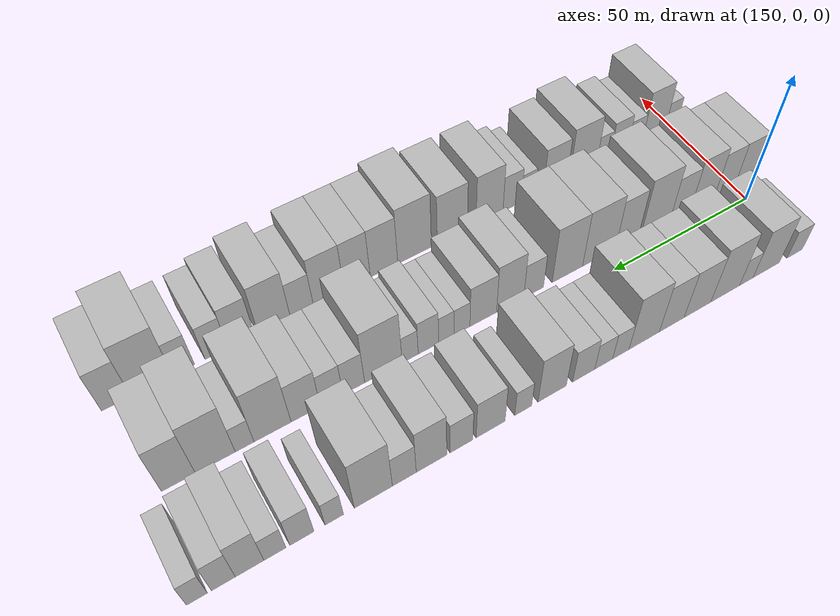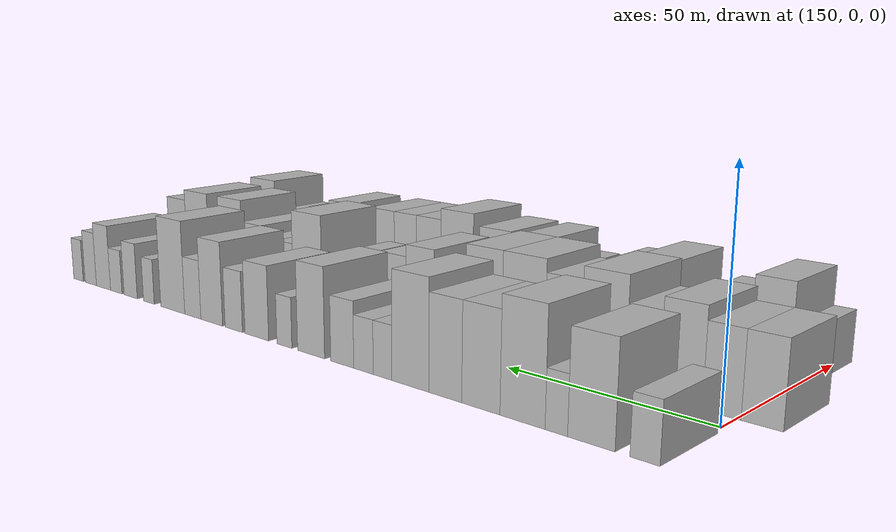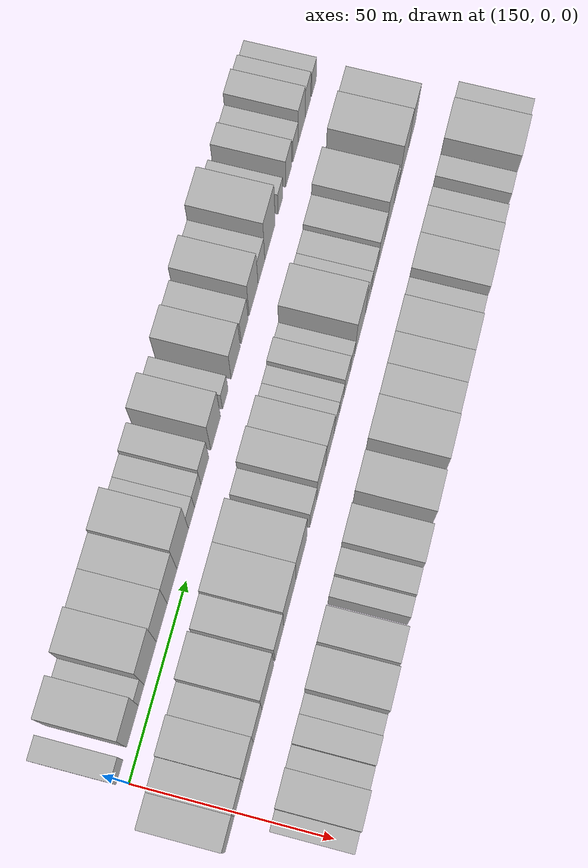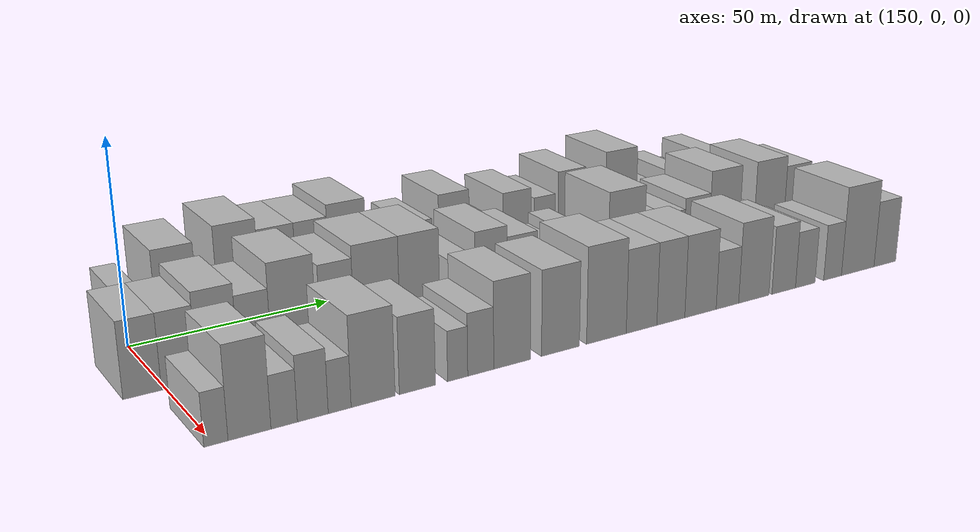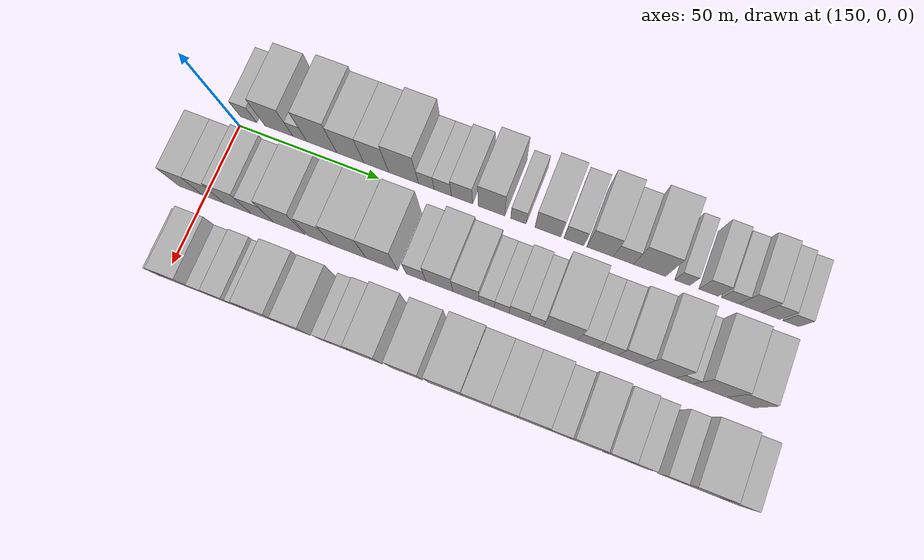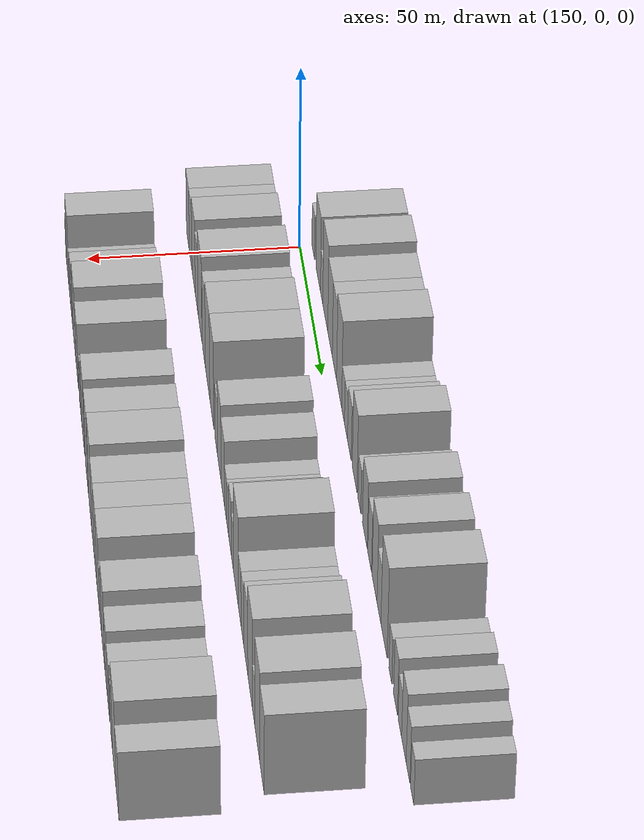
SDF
<sdf version="1.6">
 <world name="default">
  <model name="building_398">
   <static>1</static>
   <pose>137.0000 2.0042 0 0.000000 0.000000 0.000000</pose>
   <link name="link">
    <pose>0 0 6.00 0 0 0</pose>
    <collision name="collision"><geometry><box><size>20.0000 5.9630 12.0000</size></box></geometry></collision>
    <visual name="visual">
     <cast_shadows>0</cast_shadows>
     <geometry><box><size>20.0000 5.9630 12.0000</size></box></geometry>
     <material>
      <script>
       <uri>model://HANNAS_wall/materials/scripts</uri>
       <uri>model://HANNAS_wall/materials/textures</uri>
       <name>vrc/HANNAS_wall</name>
      </script>
     </material>
    </visual>
   </link>
  </model>
  <model name="building_399">
   <static>1</static>
   <pose>137.0000 13.0378 0 0.000000 0.000000 0.000000</pose>
   <link name="link">
    <pose>0 0 10.50 0 0 0</pose>
    <collision name="collision"><geometry><box><size>20.0000 10.1042 21.0000</size></box></geometry></collision>
    <visual name="visual">
     <cast_shadows>0</cast_shadows>
     <geometry><box><size>20.0000 10.1042 21.0000</size></box></geometry>
     <material>
      <script>
       <uri>model://HANNAS_wall/materials/scripts</uri>
       <uri>model://HANNAS_wall/materials/textures</uri>
       <name>vrc/HANNAS_wall</name>
      </script>
     </material>
    </visual>
   </link>
  </model>
  <model name="building_400">
   <static>1</static>
   <pose>137.0000 20.6125 0 0.000000 0.000000 0.000000</pose>
   <link name="link">
    <pose>0 0 6.00 0 0 0</pose>
    <collision name="collision"><geometry><box><size>20.0000 5.0451 12.0000</size></box></geometry></collision>
    <visual name="visual">
     <cast_shadows>0</cast_shadows>
     <geometry><box><size>20.0000 5.0451 12.0000</size></box></geometry>
     <material>
      <script>
       <uri>model://HANNAS_wall/materials/scripts</uri>
       <uri>model://HANNAS_wall/materials/textures</uri>
       <name>vrc/HANNAS_wall</name>
      </script>
     </material>
    </visual>
   </link>
  </model>
  <model name="building_401">
   <static>1</static>
   <pose>137.0000 28.4597 0 0.000000 0.000000 0.000000</pose>
   <link name="link">
    <pose>0 0 12.00 0 0 0</pose>
    <collision name="collision"><geometry><box><size>20.0000 10.6492 24.0000</size></box></geometry></collision>
    <visual name="visual">
     <cast_shadows>0</cast_shadows>
     <geometry><box><size>20.0000 10.6492 24.0000</size></box></geometry>
     <material>
      <script>
       <uri>model://HANNAS_wall/materials/scripts</uri>
       <uri>model://HANNAS_wall/materials/textures</uri>
       <name>vrc/HANNAS_wall</name>
      </script>
     </material>
    </visual>
   </link>
  </model>
  <model name="building_402">
   <static>1</static>
   <pose>137.0000 38.6065 0 0.000000 0.000000 0.000000</pose>
   <link name="link">
    <pose>0 0 10.50 0 0 0</pose>
    <collision name="collision"><geometry><box><size>20.0000 9.6444 21.0000</size></box></geometry></collision>
    <visual name="visual">
     <cast_shadows>0</cast_shadows>
     <geometry><box><size>20.0000 9.6444 21.0000</size></box></geometry>
     <material>
      <script>
       <uri>model://HANNAS_wall/materials/scripts</uri>
       <uri>model://HANNAS_wall/materials/textures</uri>
       <name>vrc/HANNAS_wall</name>
      </script>
     </material>
    </visual>
   </link>
  </model>
  <model name="building_403">
   <static>1</static>
   <pose>137.0000 47.8235 0 0.000000 0.000000 0.000000</pose>
   <link name="link">
    <pose>0 0 10.50 0 0 0</pose>
    <collision name="collision"><geometry><box><size>20.0000 8.7895 21.0000</size></box></geometry></collision>
    <visual name="visual">
     <cast_shadows>0</cast_shadows>
     <geometry><box><size>20.0000 8.7895 21.0000</size></box></geometry>
     <material>
      <script>
       <uri>model://HANNAS_wall/materials/scripts</uri>
       <uri>model://HANNAS_wall/materials/textures</uri>
       <name>vrc/HANNAS_wall</name>
      </script>
     </material>
    </visual>
   </link>
  </model>
  <model name="building_404">
   <static>1</static>
   <pose>137.0000 57.4490 0 0.000000 0.000000 0.000000</pose>
   <link name="link">
    <pose>0 0 12.00 0 0 0</pose>
    <collision name="collision"><geometry><box><size>20.0000 10.4616 24.0000</size></box></geometry></collision>
    <visual name="visual">
     <cast_shadows>0</cast_shadows>
     <geometry><box><size>20.0000 10.4616 24.0000</size></box></geometry>
     <material>
      <script>
       <uri>model://HANNAS_wall/materials/scripts</uri>
       <uri>model://HANNAS_wall/materials/textures</uri>
       <name>vrc/HANNAS_wall</name>
      </script>
     </material>
    </visual>
   </link>
  </model>
  <model name="building_405">
   <static>1</static>
   <pose>137.0000 65.4536 0 0.000000 0.000000 0.000000</pose>
   <link name="link">
    <pose>0 0 6.00 0 0 0</pose>
    <collision name="collision"><geometry><box><size>20.0000 5.5475 12.0000</size></box></geometry></collision>
    <visual name="visual">
     <cast_shadows>0</cast_shadows>
     <geometry><box><size>20.0000 5.5475 12.0000</size></box></geometry>
     <material>
      <script>
       <uri>model://HANNAS_wall/materials/scripts</uri>
       <uri>model://HANNAS_wall/materials/textures</uri>
       <name>vrc/HANNAS_wall</name>
      </script>
     </material>
    </visual>
   </link>
  </model>
  <model name="building_406">
   <static>1</static>
   <pose>137.0000 71.2246 0 0.000000 0.000000 0.000000</pose>
   <link name="link">
    <pose>0 0 6.00 0 0 0</pose>
    <collision name="collision"><geometry><box><size>20.0000 5.9944 12.0000</size></box></geometry></collision>
    <visual name="visual">
     <cast_shadows>0</cast_shadows>
     <geometry><box><size>20.0000 5.9944 12.0000</size></box></geometry>
     <material>
      <script>
       <uri>model://HANNAS_wall/materials/scripts</uri>
       <uri>model://HANNAS_wall/materials/textures</uri>
       <name>vrc/HANNAS_wall</name>
      </script>
     </material>
    </visual>
   </link>
  </model>
  <model name="building_407">
   <static>1</static>
   <pose>137.0000 77.8892 0 0.000000 0.000000 0.000000</pose>
   <link name="link">
    <pose>0 0 7.50 0 0 0</pose>
    <collision name="collision"><geometry><box><size>20.0000 7.3349 15.0000</size></box></geometry></collision>
    <visual name="visual">
     <cast_shadows>0</cast_shadows>
     <geometry><box><size>20.0000 7.3349 15.0000</size></box></geometry>
     <material>
      <script>
       <uri>model://HANNAS_wall/materials/scripts</uri>
       <uri>model://HANNAS_wall/materials/textures</uri>
       <name>vrc/HANNAS_wall</name>
      </script>
     </material>
    </visual>
   </link>
  </model>
  <model name="building_408">
   <static>1</static>
   <pose>137.0000 88.1213 0 0.000000 0.000000 0.000000</pose>
   <link name="link">
    <pose>0 0 10.50 0 0 0</pose>
    <collision name="collision"><geometry><box><size>20.0000 9.1293 21.0000</size></box></geometry></collision>
    <visual name="visual">
     <cast_shadows>0</cast_shadows>
     <geometry><box><size>20.0000 9.1293 21.0000</size></box></geometry>
     <material>
      <script>
       <uri>model://HANNAS_wall/materials/scripts</uri>
       <uri>model://HANNAS_wall/materials/textures</uri>
       <name>vrc/HANNAS_wall</name>
      </script>
     </material>
    </visual>
   </link>
  </model>
  <model name="building_409">
   <static>1</static>
   <pose>137.0000 97.3479 0 0.000000 0.000000 0.000000</pose>
   <link name="link">
    <pose>0 0 6.00 0 0 0</pose>
    <collision name="collision"><geometry><box><size>20.0000 5.3239 12.0000</size></box></geometry></collision>
    <visual name="visual">
     <cast_shadows>0</cast_shadows>
     <geometry><box><size>20.0000 5.3239 12.0000</size></box></geometry>
     <material>
      <script>
       <uri>model://HANNAS_wall/materials/scripts</uri>
       <uri>model://HANNAS_wall/materials/textures</uri>
       <name>vrc/HANNAS_wall</name>
      </script>
     </material>
    </visual>
   </link>
  </model>
  <model name="building_410">
   <static>1</static>
   <pose>137.0000 107.4400 0 0.000000 0.000000 0.000000</pose>
   <link name="link">
    <pose>0 0 9.00 0 0 0</pose>
    <collision name="collision"><geometry><box><size>20.0000 8.8602 18.0000</size></box></geometry></collision>
    <visual name="visual">
     <cast_shadows>0</cast_shadows>
     <geometry><box><size>20.0000 8.8602 18.0000</size></box></geometry>
     <material>
      <script>
       <uri>model://HANNAS_wall/materials/scripts</uri>
       <uri>model://HANNAS_wall/materials/textures</uri>
       <name>vrc/HANNAS_wall</name>
      </script>
     </material>
    </visual>
   </link>
  </model>
  <model name="building_411">
   <static>1</static>
   <pose>137.0000 116.2746 0 0.000000 0.000000 0.000000</pose>
   <link name="link">
    <pose>0 0 7.50 0 0 0</pose>
    <collision name="collision"><geometry><box><size>20.0000 6.8091 15.0000</size></box></geometry></collision>
    <visual name="visual">
     <cast_shadows>0</cast_shadows>
     <geometry><box><size>20.0000 6.8091 15.0000</size></box></geometry>
     <material>
      <script>
       <uri>model://HANNAS_wall/materials/scripts</uri>
       <uri>model://HANNAS_wall/materials/textures</uri>
       <name>vrc/HANNAS_wall</name>
      </script>
     </material>
    </visual>
   </link>
  </model>
  <model name="building_412">
   <static>1</static>
   <pose>137.0000 125.1490 0 0.000000 0.000000 0.000000</pose>
   <link name="link">
    <pose>0 0 10.50 0 0 0</pose>
    <collision name="collision"><geometry><box><size>20.0000 8.9396 21.0000</size></box></geometry></collision>
    <visual name="visual">
     <cast_shadows>0</cast_shadows>
     <geometry><box><size>20.0000 8.9396 21.0000</size></box></geometry>
     <material>
      <script>
       <uri>model://HANNAS_wall/materials/scripts</uri>
       <uri>model://HANNAS_wall/materials/textures</uri>
       <name>vrc/HANNAS_wall</name>
      </script>
     </material>
    </visual>
   </link>
  </model>
  <model name="building_413">
   <static>1</static>
   <pose>137.0000 133.0528 0 0.000000 0.000000 0.000000</pose>
   <link name="link">
    <pose>0 0 7.50 0 0 0</pose>
    <collision name="collision"><geometry><box><size>20.0000 6.8679 15.0000</size></box></geometry></collision>
    <visual name="visual">
     <cast_shadows>0</cast_shadows>
     <geometry><box><size>20.0000 6.8679 15.0000</size></box></geometry>
     <material>
      <script>
       <uri>model://HANNAS_wall/materials/scripts</uri>
       <uri>model://HANNAS_wall/materials/textures</uri>
       <name>vrc/HANNAS_wall</name>
      </script>
     </material>
    </visual>
   </link>
  </model>
  <model name="building_414">
   <static>1</static>
   <pose>137.0000 141.8436 0 0.000000 0.000000 0.000000</pose>
   <link name="link">
    <pose>0 0 12.00 0 0 0</pose>
    <collision name="collision"><geometry><box><size>20.0000 10.7137 24.0000</size></box></geometry></collision>
    <visual name="visual">
     <cast_shadows>0</cast_shadows>
     <geometry><box><size>20.0000 10.7137 24.0000</size></box></geometry>
     <material>
      <script>
       <uri>model://HANNAS_wall/materials/scripts</uri>
       <uri>model://HANNAS_wall/materials/textures</uri>
       <name>vrc/HANNAS_wall</name>
      </script>
     </material>
    </visual>
   </link>
  </model>
  <model name="building_415">
   <static>1</static>
   <pose>137.0000 152.7189 0 0.000000 0.000000 0.000000</pose>
   <link name="link">
    <pose>0 0 6.00 0 0 0</pose>
    <collision name="collision"><geometry><box><size>20.0000 5.0369 12.0000</size></box></geometry></collision>
    <visual name="visual">
     <cast_shadows>0</cast_shadows>
     <geometry><box><size>20.0000 5.0369 12.0000</size></box></geometry>
     <material>
      <script>
       <uri>model://HANNAS_wall/materials/scripts</uri>
       <uri>model://HANNAS_wall/materials/textures</uri>
       <name>vrc/HANNAS_wall</name>
      </script>
     </material>
    </visual>
   </link>
  </model>
  <model name="building_416">
   <static>1</static>
   <pose>137.0000 161.4626 0 0.000000 0.000000 0.000000</pose>
   <link name="link">
    <pose>0 0 7.50 0 0 0</pose>
    <collision name="collision"><geometry><box><size>20.0000 6.4505 15.0000</size></box></geometry></collision>
    <visual name="visual">
     <cast_shadows>0</cast_shadows>
     <geometry><box><size>20.0000 6.4505 15.0000</size></box></geometry>
     <material>
      <script>
       <uri>model://HANNAS_wall/materials/scripts</uri>
       <uri>model://HANNAS_wall/materials/textures</uri>
       <name>vrc/HANNAS_wall</name>
      </script>
     </material>
    </visual>
   </link>
  </model>
  <model name="building_417">
   <static>1</static>
   <pose>137.0000 168.5915 0 0.000000 0.000000 0.000000</pose>
   <link name="link">
    <pose>0 0 6.00 0 0 0</pose>
    <collision name="collision"><geometry><box><size>20.0000 5.8073 12.0000</size></box></geometry></collision>
    <visual name="visual">
     <cast_shadows>0</cast_shadows>
     <geometry><box><size>20.0000 5.8073 12.0000</size></box></geometry>
     <material>
      <script>
       <uri>model://HANNAS_wall/materials/scripts</uri>
       <uri>model://HANNAS_wall/materials/textures</uri>
       <name>vrc/HANNAS_wall</name>
      </script>
     </material>
    </visual>
   </link>
  </model>
  <model name="building_418">
   <static>1</static>
   <pose>137.0000 175.1611 0 0.000000 0.000000 0.000000</pose>
   <link name="link">
    <pose>0 0 9.00 0 0 0</pose>
    <collision name="collision"><geometry><box><size>20.0000 7.3321 18.0000</size></box></geometry></collision>
    <visual name="visual">
     <cast_shadows>0</cast_shadows>
     <geometry><box><size>20.0000 7.3321 18.0000</size></box></geometry>
     <material>
      <script>
       <uri>model://HANNAS_wall/materials/scripts</uri>
       <uri>model://HANNAS_wall/materials/textures</uri>
       <name>vrc/HANNAS_wall</name>
      </script>
     </material>
    </visual>
   </link>
  </model>
  <model name="building_419">
   <static>1</static>
   <pose>137.0000 181.8588 0 0.000000 0.000000 0.000000</pose>
   <link name="link">
    <pose>0 0 7.50 0 0 0</pose>
    <collision name="collision"><geometry><box><size>20.0000 6.0633 15.0000</size></box></geometry></collision>
    <visual name="visual">
     <cast_shadows>0</cast_shadows>
     <geometry><box><size>20.0000 6.0633 15.0000</size></box></geometry>
     <material>
      <script>
       <uri>model://HANNAS_wall/materials/scripts</uri>
       <uri>model://HANNAS_wall/materials/textures</uri>
       <name>vrc/HANNAS_wall</name>
      </script>
     </material>
    </visual>
   </link>
  </model>
  <model name="building_420">
   <static>1</static>
   <pose>137.0000 188.4923 0 0.000000 0.000000 0.000000</pose>
   <link name="link">
    <pose>0 0 6.00 0 0 0</pose>
    <collision name="collision"><geometry><box><size>20.0000 5.2036 12.0000</size></box></geometry></collision>
    <visual name="visual">
     <cast_shadows>0</cast_shadows>
     <geometry><box><size>20.0000 5.2036 12.0000</size></box></geometry>
     <material>
      <script>
       <uri>model://HANNAS_wall/materials/scripts</uri>
       <uri>model://HANNAS_wall/materials/textures</uri>
       <name>vrc/HANNAS_wall</name>
      </script>
     </material>
    </visual>
   </link>
  </model>
  <model name="building_510">
   <static>1</static>
   <pose>166.0000 -5.1449 0 0.000000 0.000000 0.000000</pose>
   <link name="link">
    <pose>0 0 9.00 0 0 0</pose>
    <collision name="collision"><geometry><box><size>20.0000 8.3980 18.0000</size></box></geometry></collision>
    <visual name="visual">
     <cast_shadows>0</cast_shadows>
     <geometry><box><size>20.0000 8.3980 18.0000</size></box></geometry>
     <material>
      <script>
       <uri>model://HANNAS_wall/materials/scripts</uri>
       <uri>model://HANNAS_wall/materials/textures</uri>
       <name>vrc/HANNAS_wall</name>
      </script>
     </material>
    </visual>
   </link>
  </model>
  <model name="building_511">
   <static>1</static>
   <pose>166.0000 3.0875 0 0.000000 0.000000 0.000000</pose>
   <link name="link">
    <pose>0 0 9.00 0 0 0</pose>
    <collision name="collision"><geometry><box><size>20.0000 8.0669 18.0000</size></box></geometry></collision>
    <visual name="visual">
     <cast_shadows>0</cast_shadows>
     <geometry><box><size>20.0000 8.0669 18.0000</size></box></geometry>
     <material>
      <script>
       <uri>model://HANNAS_wall/materials/scripts</uri>
       <uri>model://HANNAS_wall/materials/textures</uri>
       <name>vrc/HANNAS_wall</name>
      </script>
     </material>
    </visual>
   </link>
  </model>
  <model name="building_512">
   <static>1</static>
   <pose>166.0000 11.8502 0 0.000000 0.000000 0.000000</pose>
   <link name="link">
    <pose>0 0 10.50 0 0 0</pose>
    <collision name="collision"><geometry><box><size>20.0000 9.4586 21.0000</size></box></geometry></collision>
    <visual name="visual">
     <cast_shadows>0</cast_shadows>
     <geometry><box><size>20.0000 9.4586 21.0000</size></box></geometry>
     <material>
      <script>
       <uri>model://HANNAS_wall/materials/scripts</uri>
       <uri>model://HANNAS_wall/materials/textures</uri>
       <name>vrc/HANNAS_wall</name>
      </script>
     </material>
    </visual>
   </link>
  </model>
  <model name="building_513">
   <static>1</static>
   <pose>166.0000 20.5361 0 0.000000 0.000000 0.000000</pose>
   <link name="link">
    <pose>0 0 9.00 0 0 0</pose>
    <collision name="collision"><geometry><box><size>20.0000 7.9132 18.0000</size></box></geometry></collision>
    <visual name="visual">
     <cast_shadows>0</cast_shadows>
     <geometry><box><size>20.0000 7.9132 18.0000</size></box></geometry>
     <material>
      <script>
       <uri>model://HANNAS_wall/materials/scripts</uri>
       <uri>model://HANNAS_wall/materials/textures</uri>
       <name>vrc/HANNAS_wall</name>
      </script>
     </material>
    </visual>
   </link>
  </model>
  <model name="building_514">
   <static>1</static>
   <pose>166.0000 29.9983 0 0.000000 0.000000 0.000000</pose>
   <link name="link">
    <pose>0 0 12.00 0 0 0</pose>
    <collision name="collision"><geometry><box><size>20.0000 11.0111 24.0000</size></box></geometry></collision>
    <visual name="visual">
     <cast_shadows>0</cast_shadows>
     <geometry><box><size>20.0000 11.0111 24.0000</size></box></geometry>
     <material>
      <script>
       <uri>model://HANNAS_wall/materials/scripts</uri>
       <uri>model://HANNAS_wall/materials/textures</uri>
       <name>vrc/HANNAS_wall</name>
      </script>
     </material>
    </visual>
   </link>
  </model>
  <model name="building_515">
   <static>1</static>
   <pose>166.0000 40.7231 0 0.000000 0.000000 0.000000</pose>
   <link name="link">
    <pose>0 0 10.50 0 0 0</pose>
    <collision name="collision"><geometry><box><size>20.0000 8.4384 21.0000</size></box></geometry></collision>
    <visual name="visual">
     <cast_shadows>0</cast_shadows>
     <geometry><box><size>20.0000 8.4384 21.0000</size></box></geometry>
     <material>
      <script>
       <uri>model://HANNAS_wall/materials/scripts</uri>
       <uri>model://HANNAS_wall/materials/textures</uri>
       <name>vrc/HANNAS_wall</name>
      </script>
     </material>
    </visual>
   </link>
  </model>
  <model name="building_516">
   <static>1</static>
   <pose>166.0000 50.8614 0 0.000000 0.000000 0.000000</pose>
   <link name="link">
    <pose>0 0 12.00 0 0 0</pose>
    <collision name="collision"><geometry><box><size>20.0000 11.8383 24.0000</size></box></geometry></collision>
    <visual name="visual">
     <cast_shadows>0</cast_shadows>
     <geometry><box><size>20.0000 11.8383 24.0000</size></box></geometry>
     <material>
      <script>
       <uri>model://HANNAS_wall/materials/scripts</uri>
       <uri>model://HANNAS_wall/materials/textures</uri>
       <name>vrc/HANNAS_wall</name>
      </script>
     </material>
    </visual>
   </link>
  </model>
  <model name="building_517">
   <static>1</static>
   <pose>166.0000 62.1393 0 0.000000 0.000000 0.000000</pose>
   <link name="link">
    <pose>0 0 12.00 0 0 0</pose>
    <collision name="collision"><geometry><box><size>20.0000 10.7174 24.0000</size></box></geometry></collision>
    <visual name="visual">
     <cast_shadows>0</cast_shadows>
     <geometry><box><size>20.0000 10.7174 24.0000</size></box></geometry>
     <material>
      <script>
       <uri>model://HANNAS_wall/materials/scripts</uri>
       <uri>model://HANNAS_wall/materials/textures</uri>
       <name>vrc/HANNAS_wall</name>
      </script>
     </material>
    </visual>
   </link>
  </model>
  <model name="building_518">
   <static>1</static>
   <pose>166.0000 73.8905 0 0.000000 0.000000 0.000000</pose>
   <link name="link">
    <pose>0 0 7.50 0 0 0</pose>
    <collision name="collision"><geometry><box><size>20.0000 6.7850 15.0000</size></box></geometry></collision>
    <visual name="visual">
     <cast_shadows>0</cast_shadows>
     <geometry><box><size>20.0000 6.7850 15.0000</size></box></geometry>
     <material>
      <script>
       <uri>model://HANNAS_wall/materials/scripts</uri>
       <uri>model://HANNAS_wall/materials/textures</uri>
       <name>vrc/HANNAS_wall</name>
      </script>
     </material>
    </visual>
   </link>
  </model>
  <model name="building_519">
   <static>1</static>
   <pose>166.0000 81.8405 0 0.000000 0.000000 0.000000</pose>
   <link name="link">
    <pose>0 0 10.50 0 0 0</pose>
    <collision name="collision"><geometry><box><size>20.0000 9.1150 21.0000</size></box></geometry></collision>
    <visual name="visual">
     <cast_shadows>0</cast_shadows>
     <geometry><box><size>20.0000 9.1150 21.0000</size></box></geometry>
     <material>
      <script>
       <uri>model://HANNAS_wall/materials/scripts</uri>
       <uri>model://HANNAS_wall/materials/textures</uri>
       <name>vrc/HANNAS_wall</name>
      </script>
     </material>
    </visual>
   </link>
  </model>
  <model name="building_520">
   <static>1</static>
   <pose>166.0000 90.8011 0 0.000000 0.000000 0.000000</pose>
   <link name="link">
    <pose>0 0 9.00 0 0 0</pose>
    <collision name="collision"><geometry><box><size>20.0000 8.8064 18.0000</size></box></geometry></collision>
    <visual name="visual">
     <cast_shadows>0</cast_shadows>
     <geometry><box><size>20.0000 8.8064 18.0000</size></box></geometry>
     <material>
      <script>
       <uri>model://HANNAS_wall/materials/scripts</uri>
       <uri>model://HANNAS_wall/materials/textures</uri>
       <name>vrc/HANNAS_wall</name>
      </script>
     </material>
    </visual>
   </link>
  </model>
  <model name="building_521">
   <static>1</static>
   <pose>166.0000 97.7814 0 0.000000 0.000000 0.000000</pose>
   <link name="link">
    <pose>0 0 6.00 0 0 0</pose>
    <collision name="collision"><geometry><box><size>20.0000 5.1542 12.0000</size></box></geometry></collision>
    <visual name="visual">
     <cast_shadows>0</cast_shadows>
     <geometry><box><size>20.0000 5.1542 12.0000</size></box></geometry>
     <material>
      <script>
       <uri>model://HANNAS_wall/materials/scripts</uri>
       <uri>model://HANNAS_wall/materials/textures</uri>
       <name>vrc/HANNAS_wall</name>
      </script>
     </material>
    </visual>
   </link>
  </model>
  <model name="building_522">
   <static>1</static>
   <pose>166.0000 102.7958 0 0.000000 0.000000 0.000000</pose>
   <link name="link">
    <pose>0 0 6.00 0 0 0</pose>
    <collision name="collision"><geometry><box><size>20.0000 4.8746 12.0000</size></box></geometry></collision>
    <visual name="visual">
     <cast_shadows>0</cast_shadows>
     <geometry><box><size>20.0000 4.8746 12.0000</size></box></geometry>
     <material>
      <script>
       <uri>model://HANNAS_wall/materials/scripts</uri>
       <uri>model://HANNAS_wall/materials/textures</uri>
       <name>vrc/HANNAS_wall</name>
      </script>
     </material>
    </visual>
   </link>
  </model>
  <model name="building_523">
   <static>1</static>
   <pose>166.0000 108.4774 0 0.000000 0.000000 0.000000</pose>
   <link name="link">
    <pose>0 0 7.50 0 0 0</pose>
    <collision name="collision"><geometry><box><size>20.0000 6.4887 15.0000</size></box></geometry></collision>
    <visual name="visual">
     <cast_shadows>0</cast_shadows>
     <geometry><box><size>20.0000 6.4887 15.0000</size></box></geometry>
     <material>
      <script>
       <uri>model://HANNAS_wall/materials/scripts</uri>
       <uri>model://HANNAS_wall/materials/textures</uri>
       <name>vrc/HANNAS_wall</name>
      </script>
     </material>
    </visual>
   </link>
  </model>
  <model name="building_524">
   <static>1</static>
   <pose>166.0000 114.2203 0 0.000000 0.000000 0.000000</pose>
   <link name="link">
    <pose>0 0 6.00 0 0 0</pose>
    <collision name="collision"><geometry><box><size>20.0000 4.9970 12.0000</size></box></geometry></collision>
    <visual name="visual">
     <cast_shadows>0</cast_shadows>
     <geometry><box><size>20.0000 4.9970 12.0000</size></box></geometry>
     <material>
      <script>
       <uri>model://HANNAS_wall/materials/scripts</uri>
       <uri>model://HANNAS_wall/materials/textures</uri>
       <name>vrc/HANNAS_wall</name>
      </script>
     </material>
    </visual>
   </link>
  </model>
  <model name="building_525">
   <static>1</static>
   <pose>166.0000 122.4583 0 0.000000 0.000000 0.000000</pose>
   <link name="link">
    <pose>0 0 12.00 0 0 0</pose>
    <collision name="collision"><geometry><box><size>20.0000 11.4790 24.0000</size></box></geometry></collision>
    <visual name="visual">
     <cast_shadows>0</cast_shadows>
     <geometry><box><size>20.0000 11.4790 24.0000</size></box></geometry>
     <material>
      <script>
       <uri>model://HANNAS_wall/materials/scripts</uri>
       <uri>model://HANNAS_wall/materials/textures</uri>
       <name>vrc/HANNAS_wall</name>
      </script>
     </material>
    </visual>
   </link>
  </model>
  <model name="building_526">
   <static>1</static>
   <pose>166.0000 131.4412 0 0.000000 0.000000 0.000000</pose>
   <link name="link">
    <pose>0 0 7.50 0 0 0</pose>
    <collision name="collision"><geometry><box><size>20.0000 6.4867 15.0000</size></box></geometry></collision>
    <visual name="visual">
     <cast_shadows>0</cast_shadows>
     <geometry><box><size>20.0000 6.4867 15.0000</size></box></geometry>
     <material>
      <script>
       <uri>model://HANNAS_wall/materials/scripts</uri>
       <uri>model://HANNAS_wall/materials/textures</uri>
       <name>vrc/HANNAS_wall</name>
      </script>
     </material>
    </visual>
   </link>
  </model>
  <model name="building_527">
   <static>1</static>
   <pose>166.0000 138.0143 0 0.000000 0.000000 0.000000</pose>
   <link name="link">
    <pose>0 0 7.50 0 0 0</pose>
    <collision name="collision"><geometry><box><size>20.0000 6.6596 15.0000</size></box></geometry></collision>
    <visual name="visual">
     <cast_shadows>0</cast_shadows>
     <geometry><box><size>20.0000 6.6596 15.0000</size></box></geometry>
     <material>
      <script>
       <uri>model://HANNAS_wall/materials/scripts</uri>
       <uri>model://HANNAS_wall/materials/textures</uri>
       <name>vrc/HANNAS_wall</name>
      </script>
     </material>
    </visual>
   </link>
  </model>
  <model name="building_528">
   <static>1</static>
   <pose>166.0000 145.5884 0 0.000000 0.000000 0.000000</pose>
   <link name="link">
    <pose>0 0 9.00 0 0 0</pose>
    <collision name="collision"><geometry><box><size>20.0000 8.4886 18.0000</size></box></geometry></collision>
    <visual name="visual">
     <cast_shadows>0</cast_shadows>
     <geometry><box><size>20.0000 8.4886 18.0000</size></box></geometry>
     <material>
      <script>
       <uri>model://HANNAS_wall/materials/scripts</uri>
       <uri>model://HANNAS_wall/materials/textures</uri>
       <name>vrc/HANNAS_wall</name>
      </script>
     </material>
    </visual>
   </link>
  </model>
  <model name="building_529">
   <static>1</static>
   <pose>166.0000 155.0815 0 0.000000 0.000000 0.000000</pose>
   <link name="link">
    <pose>0 0 12.00 0 0 0</pose>
    <collision name="collision"><geometry><box><size>20.0000 10.4975 24.0000</size></box></geometry></collision>
    <visual name="visual">
     <cast_shadows>0</cast_shadows>
     <geometry><box><size>20.0000 10.4975 24.0000</size></box></geometry>
     <material>
      <script>
       <uri>model://HANNAS_wall/materials/scripts</uri>
       <uri>model://HANNAS_wall/materials/textures</uri>
       <name>vrc/HANNAS_wall</name>
      </script>
     </material>
    </visual>
   </link>
  </model>
  <model name="building_530">
   <static>1</static>
   <pose>166.0000 162.9344 0 0.000000 0.000000 0.000000</pose>
   <link name="link">
    <pose>0 0 6.00 0 0 0</pose>
    <collision name="collision"><geometry><box><size>20.0000 5.2083 12.0000</size></box></geometry></collision>
    <visual name="visual">
     <cast_shadows>0</cast_shadows>
     <geometry><box><size>20.0000 5.2083 12.0000</size></box></geometry>
     <material>
      <script>
       <uri>model://HANNAS_wall/materials/scripts</uri>
       <uri>model://HANNAS_wall/materials/textures</uri>
       <name>vrc/HANNAS_wall</name>
      </script>
     </material>
    </visual>
   </link>
  </model>
  <model name="building_531">
   <static>1</static>
   <pose>166.0000 170.9725 0 0.000000 0.000000 0.000000</pose>
   <link name="link">
    <pose>0 0 12.00 0 0 0</pose>
    <collision name="collision"><geometry><box><size>20.0000 10.8679 24.0000</size></box></geometry></collision>
    <visual name="visual">
     <cast_shadows>0</cast_shadows>
     <geometry><box><size>20.0000 10.8679 24.0000</size></box></geometry>
     <material>
      <script>
       <uri>model://HANNAS_wall/materials/scripts</uri>
       <uri>model://HANNAS_wall/materials/textures</uri>
       <name>vrc/HANNAS_wall</name>
      </script>
     </material>
    </visual>
   </link>
  </model>
  <model name="building_532">
   <static>1</static>
   <pose>166.0000 180.9080 0 0.000000 0.000000 0.000000</pose>
   <link name="link">
    <pose>0 0 10.50 0 0 0</pose>
    <collision name="collision"><geometry><box><size>20.0000 9.0032 21.0000</size></box></geometry></collision>
    <visual name="visual">
     <cast_shadows>0</cast_shadows>
     <geometry><box><size>20.0000 9.0032 21.0000</size></box></geometry>
     <material>
      <script>
       <uri>model://HANNAS_wall/materials/scripts</uri>
       <uri>model://HANNAS_wall/materials/textures</uri>
       <name>vrc/HANNAS_wall</name>
      </script>
     </material>
    </visual>
   </link>
  </model>
  <model name="building_624">
   <static>1</static>
   <pose>195.0000 0.3408 0 0.000000 0.000000 0.000000</pose>
   <link name="link">
    <pose>0 0 6.00 0 0 0</pose>
    <collision name="collision"><geometry><box><size>20.0000 5.0565 12.0000</size></box></geometry></collision>
    <visual name="visual">
     <cast_shadows>0</cast_shadows>
     <geometry><box><size>20.0000 5.0565 12.0000</size></box></geometry>
     <material>
      <script>
       <uri>model://HANNAS_wall/materials/scripts</uri>
       <uri>model://HANNAS_wall/materials/textures</uri>
       <name>vrc/HANNAS_wall</name>
      </script>
     </material>
    </visual>
   </link>
  </model>
  <model name="building_625">
   <static>1</static>
   <pose>195.0000 7.4513 0 0.000000 0.000000 0.000000</pose>
   <link name="link">
    <pose>0 0 10.50 0 0 0</pose>
    <collision name="collision"><geometry><box><size>20.0000 9.1646 21.0000</size></box></geometry></collision>
    <visual name="visual">
     <cast_shadows>0</cast_shadows>
     <geometry><box><size>20.0000 9.1646 21.0000</size></box></geometry>
     <material>
      <script>
       <uri>model://HANNAS_wall/materials/scripts</uri>
       <uri>model://HANNAS_wall/materials/textures</uri>
       <name>vrc/HANNAS_wall</name>
      </script>
     </material>
    </visual>
   </link>
  </model>
  <model name="building_626">
   <static>1</static>
   <pose>195.0000 14.9374 0 0.000000 0.000000 0.000000</pose>
   <link name="link">
    <pose>0 0 6.00 0 0 0</pose>
    <collision name="collision"><geometry><box><size>20.0000 5.8075 12.0000</size></box></geometry></collision>
    <visual name="visual">
     <cast_shadows>0</cast_shadows>
     <geometry><box><size>20.0000 5.8075 12.0000</size></box></geometry>
     <material>
      <script>
       <uri>model://HANNAS_wall/materials/scripts</uri>
       <uri>model://HANNAS_wall/materials/textures</uri>
       <name>vrc/HANNAS_wall</name>
      </script>
     </material>
    </visual>
   </link>
  </model>
  <model name="building_627">
   <static>1</static>
   <pose>195.0000 21.2909 0 0.000000 0.000000 0.000000</pose>
   <link name="link">
    <pose>0 0 7.50 0 0 0</pose>
    <collision name="collision"><geometry><box><size>20.0000 6.8995 15.0000</size></box></geometry></collision>
    <visual name="visual">
     <cast_shadows>0</cast_shadows>
     <geometry><box><size>20.0000 6.8995 15.0000</size></box></geometry>
     <material>
      <script>
       <uri>model://HANNAS_wall/materials/scripts</uri>
       <uri>model://HANNAS_wall/materials/textures</uri>
       <name>vrc/HANNAS_wall</name>
      </script>
     </material>
    </visual>
   </link>
  </model>
  <model name="building_628">
   <static>1</static>
   <pose>195.0000 27.3586 0 0.000000 0.000000 0.000000</pose>
   <link name="link">
    <pose>0 0 6.00 0 0 0</pose>
    <collision name="collision"><geometry><box><size>20.0000 5.2359 12.0000</size></box></geometry></collision>
    <visual name="visual">
     <cast_shadows>0</cast_shadows>
     <geometry><box><size>20.0000 5.2359 12.0000</size></box></geometry>
     <material>
      <script>
       <uri>model://HANNAS_wall/materials/scripts</uri>
       <uri>model://HANNAS_wall/materials/textures</uri>
       <name>vrc/HANNAS_wall</name>
      </script>
     </material>
    </visual>
   </link>
  </model>
  <model name="building_629">
   <static>1</static>
   <pose>195.0000 35.1492 0 0.000000 0.000000 0.000000</pose>
   <link name="link">
    <pose>0 0 10.50 0 0 0</pose>
    <collision name="collision"><geometry><box><size>20.0000 10.3454 21.0000</size></box></geometry></collision>
    <visual name="visual">
     <cast_shadows>0</cast_shadows>
     <geometry><box><size>20.0000 10.3454 21.0000</size></box></geometry>
     <material>
      <script>
       <uri>model://HANNAS_wall/materials/scripts</uri>
       <uri>model://HANNAS_wall/materials/textures</uri>
       <name>vrc/HANNAS_wall</name>
      </script>
     </material>
    </visual>
   </link>
  </model>
  <model name="building_630">
   <static>1</static>
   <pose>195.0000 45.7296 0 0.000000 0.000000 0.000000</pose>
   <link name="link">
    <pose>0 0 9.00 0 0 0</pose>
    <collision name="collision"><geometry><box><size>20.0000 8.8154 18.0000</size></box></geometry></collision>
    <visual name="visual">
     <cast_shadows>0</cast_shadows>
     <geometry><box><size>20.0000 8.8154 18.0000</size></box></geometry>
     <material>
      <script>
       <uri>model://HANNAS_wall/materials/scripts</uri>
       <uri>model://HANNAS_wall/materials/textures</uri>
       <name>vrc/HANNAS_wall</name>
      </script>
     </material>
    </visual>
   </link>
  </model>
  <model name="building_631">
   <static>1</static>
   <pose>195.0000 55.6726 0 0.000000 0.000000 0.000000</pose>
   <link name="link">
    <pose>0 0 6.00 0 0 0</pose>
    <collision name="collision"><geometry><box><size>20.0000 5.0706 12.0000</size></box></geometry></collision>
    <visual name="visual">
     <cast_shadows>0</cast_shadows>
     <geometry><box><size>20.0000 5.0706 12.0000</size></box></geometry>
     <material>
      <script>
       <uri>model://HANNAS_wall/materials/scripts</uri>
       <uri>model://HANNAS_wall/materials/textures</uri>
       <name>vrc/HANNAS_wall</name>
      </script>
     </material>
    </visual>
   </link>
  </model>
  <model name="building_632">
   <static>1</static>
   <pose>195.0000 61.5439 0 0.000000 0.000000 0.000000</pose>
   <link name="link">
    <pose>0 0 7.50 0 0 0</pose>
    <collision name="collision"><geometry><box><size>20.0000 6.6720 15.0000</size></box></geometry></collision>
    <visual name="visual">
     <cast_shadows>0</cast_shadows>
     <geometry><box><size>20.0000 6.6720 15.0000</size></box></geometry>
     <material>
      <script>
       <uri>model://HANNAS_wall/materials/scripts</uri>
       <uri>model://HANNAS_wall/materials/textures</uri>
       <name>vrc/HANNAS_wall</name>
      </script>
     </material>
    </visual>
   </link>
  </model>
  <model name="building_633">
   <static>1</static>
   <pose>195.0000 69.6936 0 0.000000 0.000000 0.000000</pose>
   <link name="link">
    <pose>0 0 10.50 0 0 0</pose>
    <collision name="collision"><geometry><box><size>20.0000 9.6272 21.0000</size></box></geometry></collision>
    <visual name="visual">
     <cast_shadows>0</cast_shadows>
     <geometry><box><size>20.0000 9.6272 21.0000</size></box></geometry>
     <material>
      <script>
       <uri>model://HANNAS_wall/materials/scripts</uri>
       <uri>model://HANNAS_wall/materials/textures</uri>
       <name>vrc/HANNAS_wall</name>
      </script>
     </material>
    </visual>
   </link>
  </model>
  <model name="building_634">
   <static>1</static>
   <pose>195.0000 82.7087 0 0.000000 0.000000 0.000000</pose>
   <link name="link">
    <pose>0 0 10.50 0 0 0</pose>
    <collision name="collision"><geometry><box><size>20.0000 10.4031 21.0000</size></box></geometry></collision>
    <visual name="visual">
     <cast_shadows>0</cast_shadows>
     <geometry><box><size>20.0000 10.4031 21.0000</size></box></geometry>
     <material>
      <script>
       <uri>model://HANNAS_wall/materials/scripts</uri>
       <uri>model://HANNAS_wall/materials/textures</uri>
       <name>vrc/HANNAS_wall</name>
      </script>
     </material>
    </visual>
   </link>
  </model>
  <model name="building_635">
   <static>1</static>
   <pose>195.0000 95.5704 0 0.000000 0.000000 0.000000</pose>
   <link name="link">
    <pose>0 0 12.00 0 0 0</pose>
    <collision name="collision"><geometry><box><size>20.0000 11.3202 24.0000</size></box></geometry></collision>
    <visual name="visual">
     <cast_shadows>0</cast_shadows>
     <geometry><box><size>20.0000 11.3202 24.0000</size></box></geometry>
     <material>
      <script>
       <uri>model://HANNAS_wall/materials/scripts</uri>
       <uri>model://HANNAS_wall/materials/textures</uri>
       <name>vrc/HANNAS_wall</name>
      </script>
     </material>
    </visual>
   </link>
  </model>
  <model name="building_636">
   <static>1</static>
   <pose>195.0000 105.7425 0 0.000000 0.000000 0.000000</pose>
   <link name="link">
    <pose>0 0 10.50 0 0 0</pose>
    <collision name="collision"><geometry><box><size>20.0000 9.0238 21.0000</size></box></geometry></collision>
    <visual name="visual">
     <cast_shadows>0</cast_shadows>
     <geometry><box><size>20.0000 9.0238 21.0000</size></box></geometry>
     <material>
      <script>
       <uri>model://HANNAS_wall/materials/scripts</uri>
       <uri>model://HANNAS_wall/materials/textures</uri>
       <name>vrc/HANNAS_wall</name>
      </script>
     </material>
    </visual>
   </link>
  </model>
  <model name="building_637">
   <static>1</static>
   <pose>195.0000 114.4793 0 0.000000 0.000000 0.000000</pose>
   <link name="link">
    <pose>0 0 10.50 0 0 0</pose>
    <collision name="collision"><geometry><box><size>20.0000 8.4498 21.0000</size></box></geometry></collision>
    <visual name="visual">
     <cast_shadows>0</cast_shadows>
     <geometry><box><size>20.0000 8.4498 21.0000</size></box></geometry>
     <material>
      <script>
       <uri>model://HANNAS_wall/materials/scripts</uri>
       <uri>model://HANNAS_wall/materials/textures</uri>
       <name>vrc/HANNAS_wall</name>
      </script>
     </material>
    </visual>
   </link>
  </model>
  <model name="building_638">
   <static>1</static>
   <pose>195.0000 123.5794 0 0.000000 0.000000 0.000000</pose>
   <link name="link">
    <pose>0 0 10.50 0 0 0</pose>
    <collision name="collision"><geometry><box><size>20.0000 9.7504 21.0000</size></box></geometry></collision>
    <visual name="visual">
     <cast_shadows>0</cast_shadows>
     <geometry><box><size>20.0000 9.7504 21.0000</size></box></geometry>
     <material>
      <script>
       <uri>model://HANNAS_wall/materials/scripts</uri>
       <uri>model://HANNAS_wall/materials/textures</uri>
       <name>vrc/HANNAS_wall</name>
      </script>
     </material>
    </visual>
   </link>
  </model>
  <model name="building_639">
   <static>1</static>
   <pose>195.0000 132.0365 0 0.000000 0.000000 0.000000</pose>
   <link name="link">
    <pose>0 0 7.50 0 0 0</pose>
    <collision name="collision"><geometry><box><size>20.0000 7.1637 15.0000</size></box></geometry></collision>
    <visual name="visual">
     <cast_shadows>0</cast_shadows>
     <geometry><box><size>20.0000 7.1637 15.0000</size></box></geometry>
     <material>
      <script>
       <uri>model://HANNAS_wall/materials/scripts</uri>
       <uri>model://HANNAS_wall/materials/textures</uri>
       <name>vrc/HANNAS_wall</name>
      </script>
     </material>
    </visual>
   </link>
  </model>
  <model name="building_640">
   <static>1</static>
   <pose>195.0000 140.5492 0 0.000000 0.000000 0.000000</pose>
   <link name="link">
    <pose>0 0 10.50 0 0 0</pose>
    <collision name="collision"><geometry><box><size>20.0000 9.8619 21.0000</size></box></geometry></collision>
    <visual name="visual">
     <cast_shadows>0</cast_shadows>
     <geometry><box><size>20.0000 9.8619 21.0000</size></box></geometry>
     <material>
      <script>
       <uri>model://HANNAS_wall/materials/scripts</uri>
       <uri>model://HANNAS_wall/materials/textures</uri>
       <name>vrc/HANNAS_wall</name>
      </script>
     </material>
    </visual>
   </link>
  </model>
  <model name="building_641">
   <static>1</static>
   <pose>195.0000 150.4441 0 0.000000 0.000000 0.000000</pose>
   <link name="link">
    <pose>0 0 9.00 0 0 0</pose>
    <collision name="collision"><geometry><box><size>20.0000 7.9280 18.0000</size></box></geometry></collision>
    <visual name="visual">
     <cast_shadows>0</cast_shadows>
     <geometry><box><size>20.0000 7.9280 18.0000</size></box></geometry>
     <material>
      <script>
       <uri>model://HANNAS_wall/materials/scripts</uri>
       <uri>model://HANNAS_wall/materials/textures</uri>
       <name>vrc/HANNAS_wall</name>
      </script>
     </material>
    </visual>
   </link>
  </model>
  <model name="building_642">
   <static>1</static>
   <pose>195.0000 157.7591 0 0.000000 0.000000 0.000000</pose>
   <link name="link">
    <pose>0 0 7.50 0 0 0</pose>
    <collision name="collision"><geometry><box><size>20.0000 6.7020 15.0000</size></box></geometry></collision>
    <visual name="visual">
     <cast_shadows>0</cast_shadows>
     <geometry><box><size>20.0000 6.7020 15.0000</size></box></geometry>
     <material>
      <script>
       <uri>model://HANNAS_wall/materials/scripts</uri>
       <uri>model://HANNAS_wall/materials/textures</uri>
       <name>vrc/HANNAS_wall</name>
      </script>
     </material>
    </visual>
   </link>
  </model>
  <model name="building_643">
   <static>1</static>
   <pose>195.0000 167.2336 0 0.000000 0.000000 0.000000</pose>
   <link name="link">
    <pose>0 0 7.50 0 0 0</pose>
    <collision name="collision"><geometry><box><size>20.0000 6.2471 15.0000</size></box></geometry></collision>
    <visual name="visual">
     <cast_shadows>0</cast_shadows>
     <geometry><box><size>20.0000 6.2471 15.0000</size></box></geometry>
     <material>
      <script>
       <uri>model://HANNAS_wall/materials/scripts</uri>
       <uri>model://HANNAS_wall/materials/textures</uri>
       <name>vrc/HANNAS_wall</name>
      </script>
     </material>
    </visual>
   </link>
  </model>
  <model name="building_644">
   <static>1</static>
   <pose>195.0000 176.2258 0 0.000000 0.000000 0.000000</pose>
   <link name="link">
    <pose>0 0 12.00 0 0 0</pose>
    <collision name="collision"><geometry><box><size>20.0000 11.7374 24.0000</size></box></geometry></collision>
    <visual name="visual">
     <cast_shadows>0</cast_shadows>
     <geometry><box><size>20.0000 11.7374 24.0000</size></box></geometry>
     <material>
      <script>
       <uri>model://HANNAS_wall/materials/scripts</uri>
       <uri>model://HANNAS_wall/materials/textures</uri>
       <name>vrc/HANNAS_wall</name>
      </script>
     </material>
    </visual>
   </link>
  </model>
  <model name="building_645">
   <static>1</static>
   <pose>195.0000 186.1058 0 0.000000 0.000000 0.000000</pose>
   <link name="link">
    <pose>0 0 9.00 0 0 0</pose>
    <collision name="collision"><geometry><box><size>20.0000 8.0226 18.0000</size></box></geometry></collision>
    <visual name="visual">
     <cast_shadows>0</cast_shadows>
     <geometry><box><size>20.0000 8.0226 18.0000</size></box></geometry>
     <material>
      <script>
       <uri>model://HANNAS_wall/materials/scripts</uri>
       <uri>model://HANNAS_wall/materials/textures</uri>
       <name>vrc/HANNAS_wall</name>
      </script>
     </material>
    </visual>
   </link>
  </model>
 </world>
</sdf>
